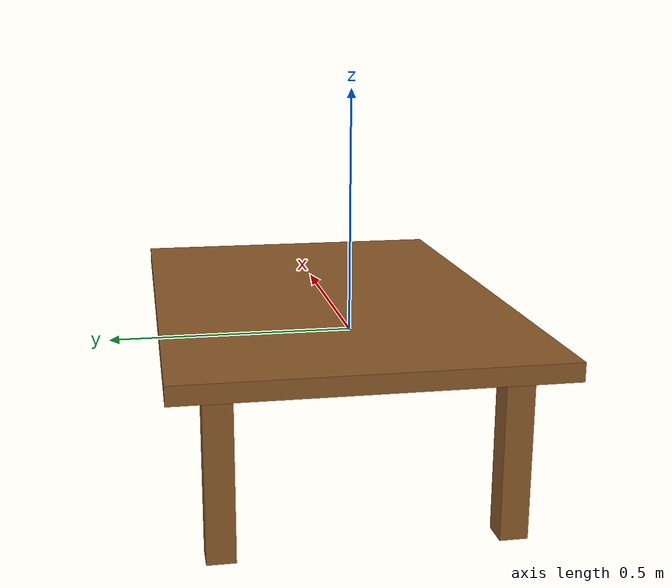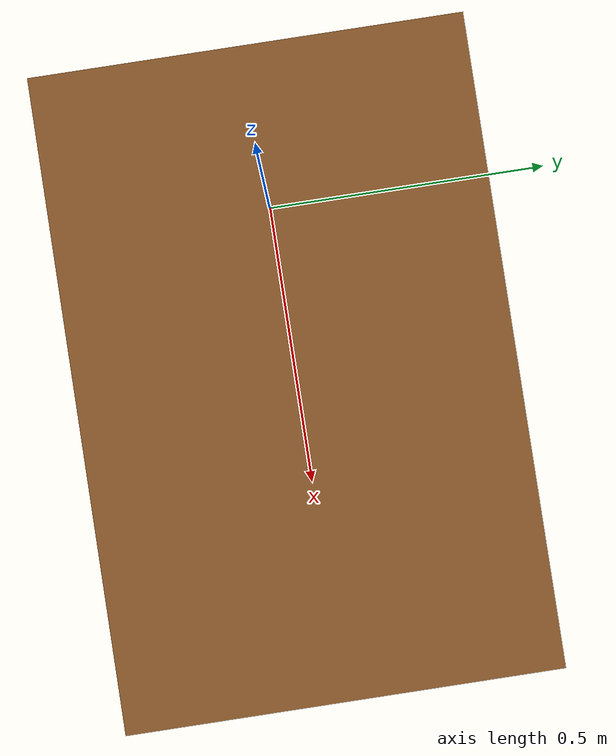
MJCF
<mujoco model="wooden table">
  <asset>
    <material name="wood" rgba="0.55 0.35 0.16 1" specular="0.1" shininess="0.1"/>
  </asset>

  <default>
    <!-- Table surface sits at local z=0 so the body's pos can be placed flush with the robot's base height -->
    <default class="table">
      <geom type="box" material="wood" contype="1" conaffinity="1"/>
    </default>
  </default>

  <worldbody>
    <body name="table" pos="0.3 0 0">
      <geom name="table_top" class="table" pos="0 0 -0.02" size="0.6 0.4 0.02"/>
      <geom name="table_leg_fl" class="table" pos="0.5 0.3 -0.22" size="0.03 0.03 0.18"/>
      <geom name="table_leg_fr" class="table" pos="0.5 -0.3 -0.22" size="0.03 0.03 0.18"/>
      <geom name="table_leg_bl" class="table" pos="-0.5 0.3 -0.22" size="0.03 0.03 0.18"/>
      <geom name="table_leg_br" class="table" pos="-0.5 -0.3 -0.22" size="0.03 0.03 0.18"/>
    </body>
  </worldbody>
</mujoco>
